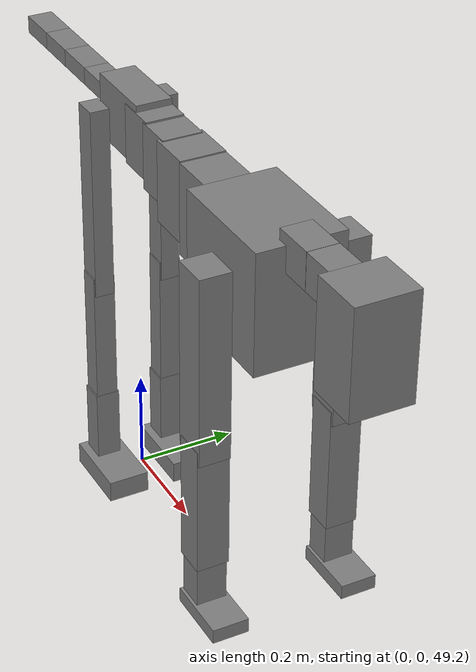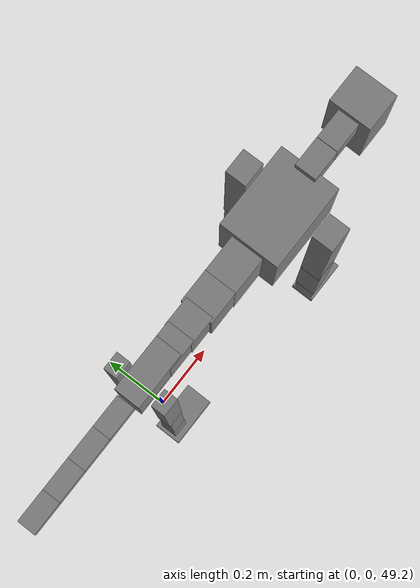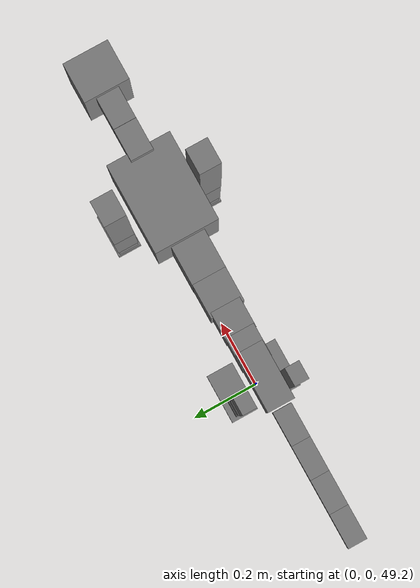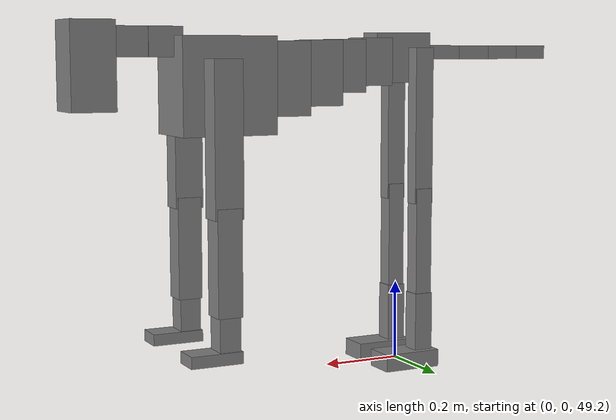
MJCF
<mujoco model="dog">

    <default>
        <joint armature="0.02" stiffness="1" damping="0.2" limited="true"/>
        <geom condim="3" friction="1 0.05 0.05" margin="0.01"/>
        <motor ctrllimited="true" ctrlrange="-1.0 1.0" forcelimited="true" gear="50"/>
    </default>

    <compiler inertiafromgeom="true" angle="radian"/>

    <option timestep="0.016" iterations="50" tolerance="1e-10" solver="Newton" jacobian="dense" cone="pyramidal"/>

    <size nconmax="20000" njmax="60000" nstack="5000000"/>
    <visual>
        <map force="0.1" zfar="30"/>
        <rgba haze="0.15 0.25 0.35 1"/>
        <quality shadowsize="2048"/>
        <global offwidth="800" offheight="800"/>
    </visual>

    <asset>
        <texture type="skybox" builtin="gradient" rgb1="0.3 0.5 0.7" rgb2="0 0 0" width="512" height="512"/>
        <texture name="texplane" type="2d" builtin="checker" rgb1=".2 .3 .4" rgb2=".1 0.15 0.2" width="512" height="512"
                 mark="cross" markrgb=".8 .8 .8"/>
        <texture name="texgeom" type="cube" builtin="flat" mark="cross" width="127" height="1278" rgb1="0.8 0.6 0.4"
                 rgb2="0.8 0.6 0.4" markrgb="1 1 1" random="0.01"/>

        <material name="matplane" reflectance="0.3" texture="texplane" texrepeat="1 1" texuniform="true"/>
        <material name="matgeom" texture="texgeom" texuniform="true" rgba="0.8 0.6 .4 1"/>
    </asset>

    <worldbody>
        <geom name="floor" pos="0 0 0" size="0 0 .25" type="plane" material="matplane" condim="3"/>

        <light directional="false" diffuse=".2 .2 .2" specular="0 0 0" pos="0 0 5" dir="0 0 -1" castshadow="false"/>
        <light mode="targetbodycom" target="torso" directional="false" diffuse=".8 .8 .8" specular="0.3 0.3 0.3"
               pos="0 0 4.0" dir="0 0 -1"/>

        <body name="root" pos="0 0 50">
            <freejoint name="root_1"/>
            <geom type="box" pos="0 0 -0.02" size="0.0774  0.0358  0.063" density="2030"/>

            <body name="spine1" pos="0.054 0 0">
                <joint name="spine1_y" axis="0 1 0" range="0 0.7" limited="true"/>
                <geom type="box" pos="0.02375 0 -0.03" size="0.04375  0.0375  0.05985" density="2030"/>

                <body name="spine2" pos="0.0612 0 0">
                    <joint name="spine2_y" axis="0 1 0" range="-0.15 0.15" limited="true"/>
                    <geom type="box" pos="0.03555  0  -0.04" size="0.04055  0.039  0.06615" density="2030"/>

                    <body name="spine3" pos="0.0730 0 0">
                        <joint name="spine3_y" axis="0 1 0" range="-0.15 0.15" limited="true"/>
                        <geom type="box" pos="0.03555  0  -0.057" size="0.04555  0.0445  0.081" density="2030"/>

                        <body name="spine4" pos="0.0780 0 0">
                            <joint name="spine4_y" axis="0 1 0" range="-0.15 0.15" limited="true"/>
                            <geom type="box" pos="0.05265  0  -0.07" size="0.05265  0.045  0.09135" density="2030"/>

                            <body name="torso" pos="0.1082 0 0">
                                <joint name="torso_y" axis="0 1 0" range="-0.15 0.15" limited="true"/>
                                <geom type="box" pos="0.11925  0  -0.085" size="0.11925  0.085  0.11745"
                                      density="2030"/>

                                <body name="neck1" pos="0.2160  0   0.0180">
                                    <joint name="neck1_y" axis="0 1 0" range="-1.2  -1" limited="true"/>
                                    <geom type="box" pos="0.0423  0  0" size="0.0423  0.03  0.036" density="2325"/>

                                    <body name="neck2" pos="0.0853  0  0">
                                        <joint name="neck2_y" axis="0 1 0" range="0.1  0" limited="true"/>
                                        <geom type="box" pos="0.0423  0  0" size="0.0423  0.03  0.036" density="2325"/>

                                        <body name="head" pos="0.0853  0  0">
                                            <joint name="head_y" axis="0 1 0" range="-0.3  -0.2" limited="true"/>
                                            <geom type="box" pos="0.0531  0  -0.055" size="0.0531  0.06  0.1044"
                                                  density="4030"/>

                                        </body>
                                    </body>
                                </body>

                                <body name="front_shoulder" pos="0.156  0   -0.0480">
                                    <joint name="front_shoulder_y" axis="0 1 0" range="-1 1.5" limited="true"/>
                                    <geom type="box" pos="0 0.13 -0.1577" size="0.0355  0.0303  0.1843" density="1158"/>
                                    <geom type="box" pos="0 -0.13 -0.1577" size="0.0355  0.0303  0.1843"
                                          density="1158"/>

                                    <body name="front_elbow" pos="0  0  -0.3153">
                                        <joint name="front_elbow_y" axis="0 1 0" range="-2 0" limited="true"/>
                                        <geom type="box" pos="0 0.13 -0.1274" size="0.0306  0.0313  0.1274"
                                              density="1081"/>
                                        <geom type="box" pos="0 -0.13 -0.1274" size="0.0306  0.0313  0.1274"
                                              density="1081"/>

                                        <body name="front_wrist" pos="0  0  -0.2547">
                                            <joint name="front_wrist_y" axis="0 1 0" range="-0.2 0" limited="true"/>
                                            <geom type="box" pos="0 0.13 -0.0477" size="0.0263  0.0292  0.0608"
                                                  density="1664"/>
                                            <geom type="box" pos="0 -0.13 -0.0477" size="0.0263  0.0292  0.0608"
                                                  density="1664"/>

                                            <body name="front_finger_end" pos="0  0  -0.0953">
                                                <joint name="front_finger_y" axis="0 1 0" range="-0.4 1"
                                                       limited="true"/>
                                                <geom type="box" pos="0.0352  0.13  0.0006"
                                                      size="0.0646  0.0352  0.0144" density="1515"/>
                                                <geom type="box" pos="0.0352  -0.13  0.0006"
                                                      size="0.0646  0.0352  0.0144" density="1515"/>

                                            </body>

                                        </body>
                                    </body>
                                </body>

                            </body>
                        </body>
                    </body>
                </body>
            </body>

            <body name="back_hip" pos="-0.03 0 -0.018">
                <joint name="back_hip_y" axis="0 1 0" range="-1.5 0.3" limited="true"/>
                <geom type="box" pos="0 0.07 -0.1737" size="0.0248  0.0194  0.1965" density="1154"/>
                <geom type="box" pos="0 -0.07 -0.1737" size="0.0248  0.0194  0.1965" density="1154"/>

                <body name="back_knee" pos="0  0  -0.3473">
                    <joint name="back_knee_y" axis="0 1 0" range="0 2.8" limited="true"/>
                    <geom type="box" pos="0 0.07 -0.1323" size="0.0220  0.0217  0.1478" density="1227"/>
                    <geom type="box" pos="0 -0.07 -0.1323" size="0.0220  0.0217  0.1478" density="1227"/>

                    <body name="back_ankle" pos="0  0  -0.2645">
                        <joint name="back_ankle_y" axis="0 1 0" range="-2.2 0" limited="true"/>
                        <geom type="box" pos="0 0.07 -0.0748" size="0.0241  0.0241  0.0861" density="1284"/>
                        <geom type="box" pos="0 -0.07 -0.0748" size="0.0241  0.0241  0.0861" density="1284"/>

                        <body name="back_toe_end" pos="0  0  -0.1497">
                            <joint name="back_toe_y" axis="0 1 0" range="-0.4 1" limited="true"/>
                            <geom type="box" pos="0.0411  0.07  -0.0068" size="0.0753  0.0411  0.0218" density="1515"/>
                            <geom type="box" pos="0.0411  -0.07  -0.0068" size="0.0753  0.0411  0.0218" density="1515"/>

                        </body>
                    </body>
                </body>
            </body>

            <body name="tail1" pos="-0.074 0 -0.006">
                <joint name="tail1_y" axis="0 1 0" range="-0.2 0.2" limited="true"/>
                <geom type="box" pos="-0.0536  0  0" size="0.045  0.025  0.0175" density="1587"/>

                <body name="tail2" pos="-0.09 0 0">
                    <joint name="tail2_y" axis="0 1 0" range="-0.2 0.2" limited="true"/>
                    <geom type="box" pos="-0.0536  0  0" size="0.045  0.025  0.0175" density="1587"/>

                    <body name="tail3" pos="-0.09 0 0">
                        <joint name="tail3_y" axis="0 1 0" range="-0.2 0.2" limited="true"/>
                        <geom type="box" pos="-0.0536  0  0" size="0.045  0.025  0.0175" density="1587"/>

                        <body name="tail4" pos="-0.09 0 0">
                            <joint name="tail4_y" axis="0 1 0" range="-0.2 0.2" limited="true"/>
                            <geom type="box" pos="-0.0536  0  0" size="0.045  0.025  0.0175" density="1587"/>

                        </body>
                    </body>
                </body>
            </body>
        </body>
    </worldbody>

    <actuator>
        <motor joint="spine1_y" forcerange="-150 150     "/>
        <motor joint="spine2_y" forcerange="-150 150     "/>
        <motor joint="spine3_y" forcerange="-150 150     "/>
        <motor joint="spine4_y" forcerange="-150 150     "/>
        <motor joint="torso_y" forcerange="-150 150     "/>
        <motor joint="neck1_y" forcerange="-100 100       "/>
        <motor joint="neck2_y" forcerange="-100 100       "/>
        <motor joint="head_y" forcerange="-150 150       "/>
        <motor joint="front_shoulder_y" forcerange="-103.62 198.50"/>
        <motor joint="front_elbow_y" forcerange="-141.99 185.68"/>
        <motor joint="front_wrist_y" forcerange="-119.99 113.39"/>
        <motor joint="front_finger_y" forcerange="-87.93 59.91"/>
        <motor joint="back_hip_y" forcerange="-233.59 225.63"/>
        <motor joint="back_knee_y" forcerange="-250.94 264.05"/>
        <motor joint="back_angle_y" forcerange="-233.43 52.01"/>
        <motor joint="back_toe_y" forcerange="-129.23 119.18"/>
        <motor joint="tail1_y" forcerange="-50 50     "/>
        <motor joint="tail2_y" forcerange="-50 50     "/>
        <motor joint="tail3_y" forcerange="-50 50     "/>
        <motor joint="tail4_y" forcerange="-50 50     "/>
    </actuator>
</mujoco>
